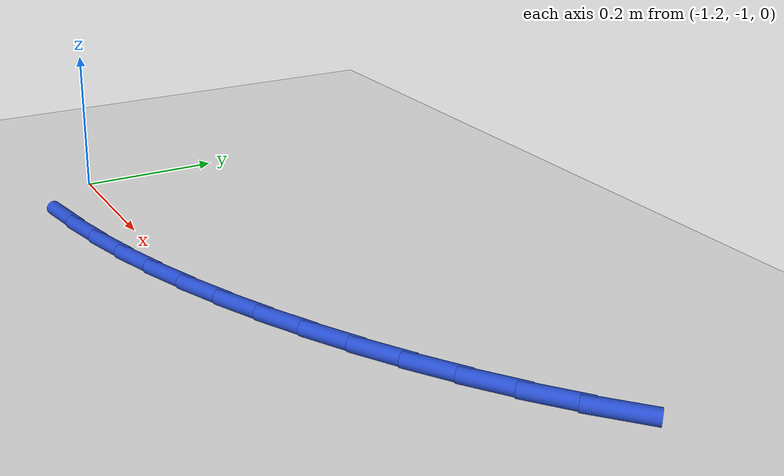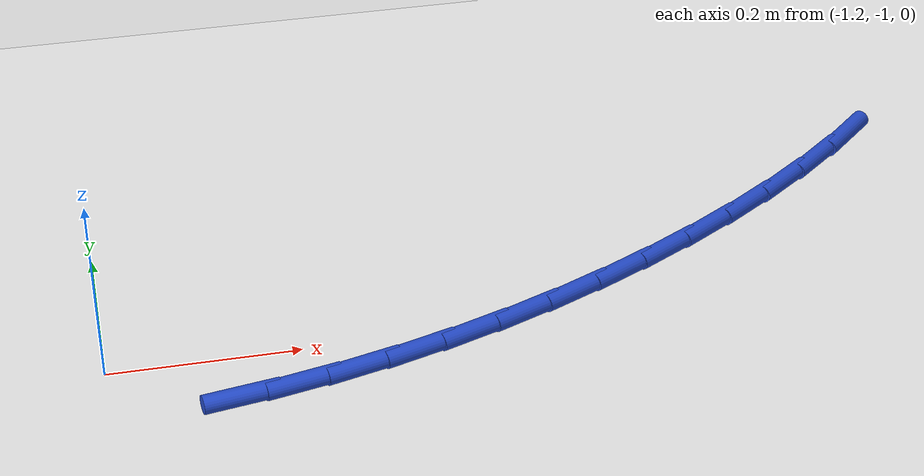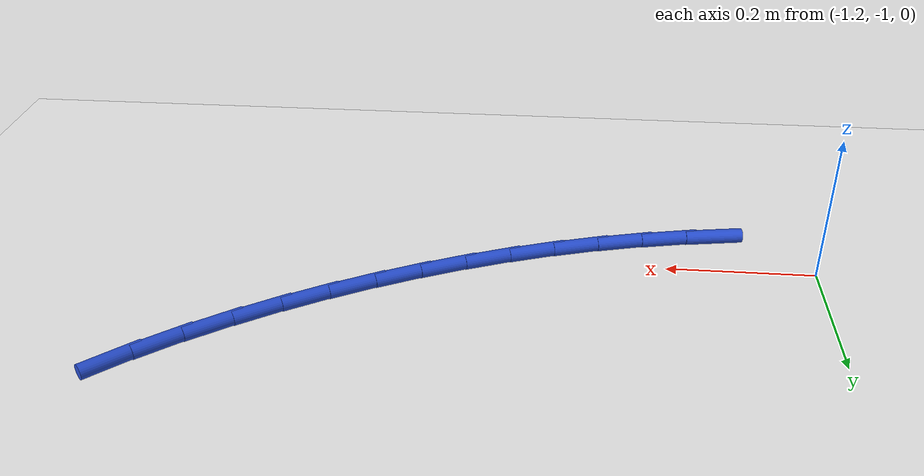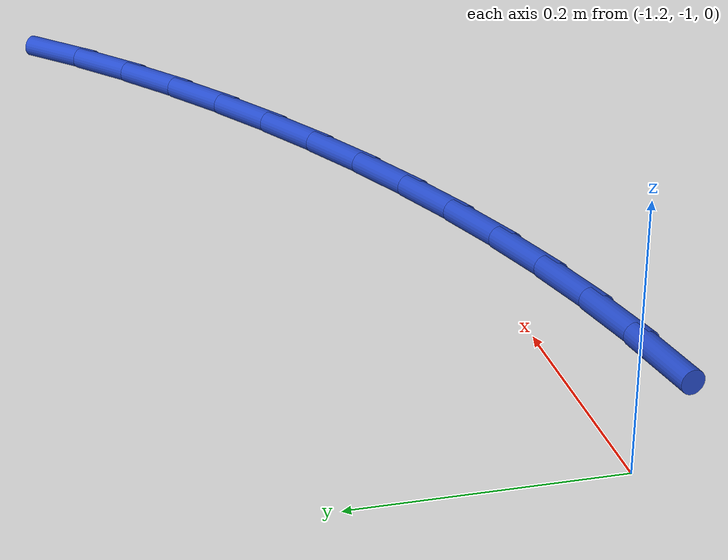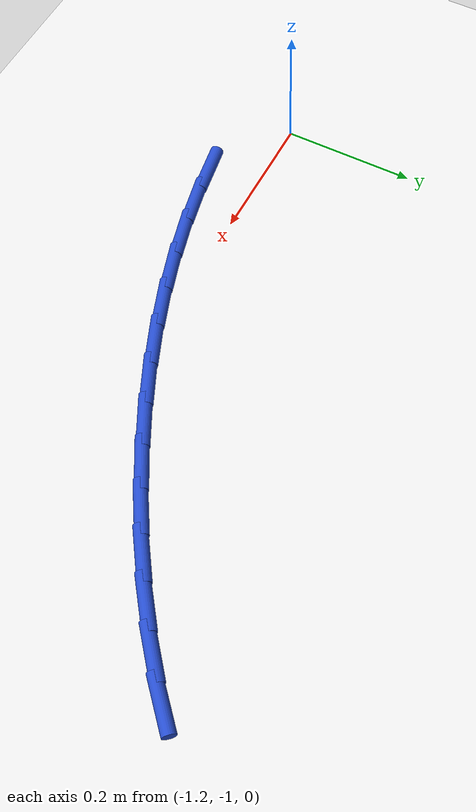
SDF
<sdf version="1.6">
 <world name="default">
  <model name="ground_plane">
   <static>1</static>
   <link name="link">
    <collision name="collision">
     <geometry><plane><normal>0 0 1</normal><size>100 100</size></plane></geometry>
     <surface><friction><ode><mu>100</mu><mu2>50</mu2></ode></friction></surface>
    </collision>
    <visual name="visual">
     <cast_shadows>0</cast_shadows>
     <geometry><plane><normal>0 0 1</normal><size>100 100</size></plane></geometry>
     <material>
      <script><uri>file://media/materials/scripts/gazebo.material</uri><name>Gazebo/WhiteGlow</name></script>
     </material>
    </visual>
   </link>
  </model>
  <model name="line">
   <link name="link_84">
    <pose>-1.070272800368808 -1.0752466244581067 0.01 0 1.57 0.16521829812505798</pose>
    <collision name="collision">
     <geometry><cylinder><radius>0.01</radius><length>0.08</length></cylinder></geometry>
    </collision>
    <visual name="visual">
     <material>
      <script><name>Gazebo/Blue</name><uri>file://media/materials/scripts/gazebo.material</uri></script>
     </material>
     <geometry><cylinder><radius>0.01</radius><length>0.08</length></cylinder></geometry>
    </visual>
   </link>
   <link name="link_85">
    <pose>-1.0074285176441613 -1.064768080486436 0.01 0 1.57 0.21354034161877422</pose>
    <collision name="collision">
     <geometry><cylinder><radius>0.01</radius><length>0.08</length></cylinder></geometry>
    </collision>
    <visual name="visual">
     <material>
      <script><name>Gazebo/Blue</name><uri>file://media/materials/scripts/gazebo.material</uri></script>
     </material>
     <geometry><cylinder><radius>0.01</radius><length>0.08</length></cylinder></geometry>
    </visual>
   </link>
   <link name="link_86">
    <pose>-0.9454706787380246 -1.0513327441133953 0.01 0 1.57 0.26078687534912304</pose>
    <collision name="collision">
     <geometry><cylinder><radius>0.01</radius><length>0.08</length></cylinder></geometry>
    </collision>
    <visual name="visual">
     <material>
      <script><name>Gazebo/Blue</name><uri>file://media/materials/scripts/gazebo.material</uri></script>
     </material>
     <geometry><cylinder><radius>0.01</radius><length>0.08</length></cylinder></geometry>
    </visual>
   </link>
   <link name="link_87">
    <pose>-0.8844031571423288 -1.0350360040030535 0.01 0 1.57 0.3067951400396476</pose>
    <collision name="collision">
     <geometry><cylinder><radius>0.01</radius><length>0.08</length></cylinder></geometry>
    </collision>
    <visual name="visual">
     <material>
      <script><name>Gazebo/Blue</name><uri>file://media/materials/scripts/gazebo.material</uri></script>
     </material>
     <geometry><cylinder><radius>0.01</radius><length>0.08</length></cylinder></geometry>
    </visual>
   </link>
   <link name="link_88">
    <pose>-0.8242298263490073 -1.0159732488194795 0.01 0 1.57 0.3514316658737237</pose>
    <collision name="collision">
     <geometry><cylinder><radius>0.01</radius><length>0.08</length></cylinder></geometry>
    </collision>
    <visual name="visual">
     <material>
      <script><name>Gazebo/Blue</name><uri>file://media/materials/scripts/gazebo.material</uri></script>
     </material>
     <geometry><cylinder><radius>0.01</radius><length>0.08</length></cylinder></geometry>
    </visual>
   </link>
   <link name="link_89">
    <pose>-0.7649545598499916 -0.9942398672267415 0.01 0 1.57 0.3945925711195384</pose>
    <collision name="collision">
     <geometry><cylinder><radius>0.01</radius><length>0.08</length></cylinder></geometry>
    </collision>
    <visual name="visual">
     <material>
      <script><name>Gazebo/Blue</name><uri>file://media/materials/scripts/gazebo.material</uri></script>
     </material>
     <geometry><cylinder><radius>0.01</radius><length>0.08</length></cylinder></geometry>
    </visual>
   </link>
   <link name="link_90">
    <pose>-0.7065812311372152 -0.9699312478889092 0.01 0 1.57 0.4362025937065438</pose>
    <collision name="collision">
     <geometry><cylinder><radius>0.01</radius><length>0.08</length></cylinder></geometry>
    </collision>
    <visual name="visual">
     <material>
      <script><name>Gazebo/Blue</name><uri>file://media/materials/scripts/gazebo.material</uri></script>
     </material>
     <geometry><cylinder><radius>0.01</radius><length>0.08</length></cylinder></geometry>
    </visual>
   </link>
   <link name="link_91">
    <pose>-0.6491137137026087 -0.94314277947005 0.01 0 1.57 0.4762131340974232</pose>
    <collision name="collision">
     <geometry><cylinder><radius>0.01</radius><length>0.08</length></cylinder></geometry>
    </collision>
    <visual name="visual">
     <material>
      <script><name>Gazebo/Blue</name><uri>file://media/materials/scripts/gazebo.material</uri></script>
     </material>
     <geometry><cylinder><radius>0.01</radius><length>0.08</length></cylinder></geometry>
    </visual>
   </link>
   <link name="link_92">
    <pose>-0.5925558810381061 -0.9139698506342336 0.01 0 1.57 0.5150439860591906</pose>
    <collision name="collision">
     <geometry><cylinder><radius>0.01</radius><length>0.08</length></cylinder></geometry>
    </collision>
    <visual name="visual">
     <material>
      <script><name>Gazebo/Blue</name><uri>file://media/materials/scripts/gazebo.material</uri></script>
     </material>
     <geometry><cylinder><radius>0.01</radius><length>0.08</length></cylinder></geometry>
    </visual>
   </link>
   <link name="link_93">
    <pose>-0.536944433494067 -0.8824937897812912 0.01 0 1.57 0.5555297196973759</pose>
    <collision name="collision">
     <geometry><cylinder><radius>0.01</radius><length>0.08</length></cylinder></geometry>
    </collision>
    <visual name="visual">
     <material>
      <script><name>Gazebo/Blue</name><uri>file://media/materials/scripts/gazebo.material</uri></script>
     </material>
     <geometry><cylinder><radius>0.01</radius><length>0.08</length></cylinder></geometry>
    </visual>
   </link>
   <link name="link_94">
    <pose>-0.4825182703797204 -0.8487093202892457 0.01 0 1.57 0.5990098510212688</pose>
    <collision name="collision">
     <geometry><cylinder><radius>0.01</radius><length>0.08</length></cylinder></geometry>
    </collision>
    <visual name="visual">
     <material>
      <script><name>Gazebo/Blue</name><uri>file://media/materials/scripts/gazebo.material</uri></script>
     </material>
     <geometry><cylinder><radius>0.01</radius><length>0.08</length></cylinder></geometry>
    </visual>
   </link>
   <link name="link_95">
    <pose>-0.42959321240928844 -0.8125782188780634 0.01 0 1.57 0.6458141733938697</pose>
    <collision name="collision">
     <geometry><cylinder><radius>0.01</radius><length>0.08</length></cylinder></geometry>
    </collision>
    <visual name="visual">
     <material>
      <script><name>Gazebo/Blue</name><uri>file://media/materials/scripts/gazebo.material</uri></script>
     </material>
     <geometry><cylinder><radius>0.01</radius><length>0.08</length></cylinder></geometry>
    </visual>
   </link>
   <link name="link_96">
    <pose>-0.3784852300037582 -0.7740621981459291 0.01 0 1.57 0.69626407805551</pose>
    <collision name="collision">
     <geometry><cylinder><radius>0.01</radius><length>0.08</length></cylinder></geometry>
    </collision>
    <visual name="visual">
     <material>
      <script><name>Gazebo/Blue</name><uri>file://media/materials/scripts/gazebo.material</uri></script>
     </material>
     <geometry><cylinder><radius>0.01</radius><length>0.08</length></cylinder></geometry>
    </visual>
   </link>
   <link name="link_97">
    <pose>-0.3295102935841155 -0.7331229706910275 0.01 0 1.57 0.750659390414803</pose>
    <collision name="collision">
     <geometry><cylinder><radius>0.01</radius><length>0.08</length></cylinder></geometry>
    </collision>
    <visual name="visual">
     <material>
      <script><name>Gazebo/Blue</name><uri>file://media/materials/scripts/gazebo.material</uri></script>
     </material>
     <geometry><cylinder><radius>0.01</radius><length>0.08</length></cylinder></geometry>
    </visual>
   </link>
  </model>
 </world>
</sdf>
